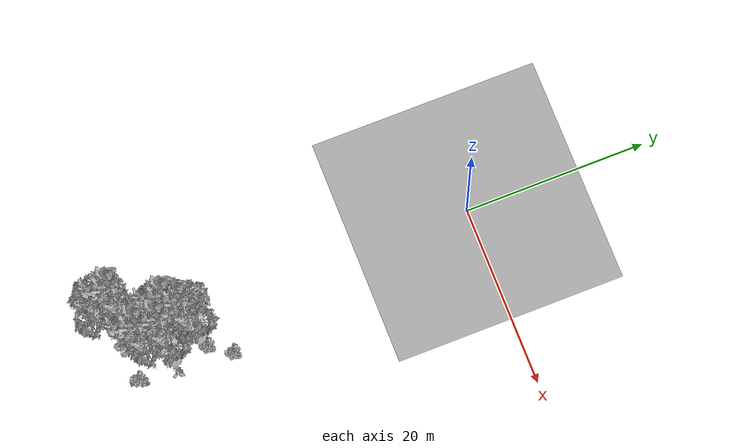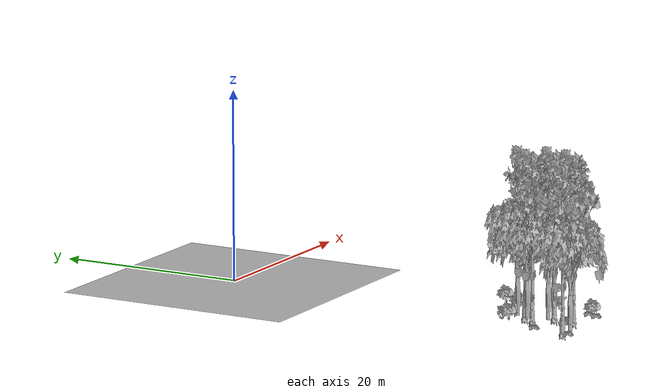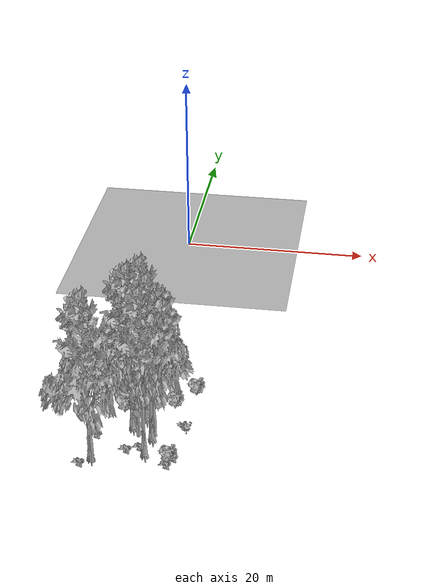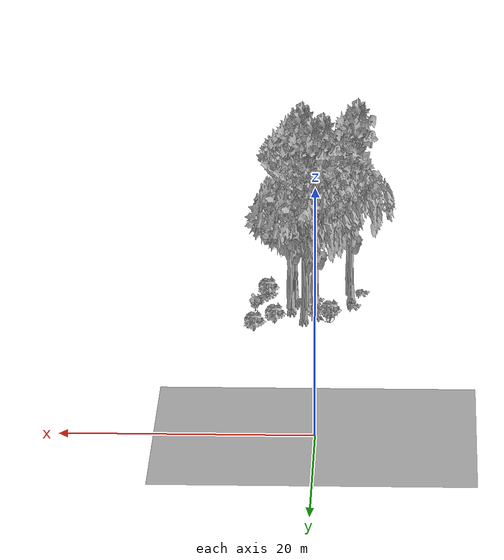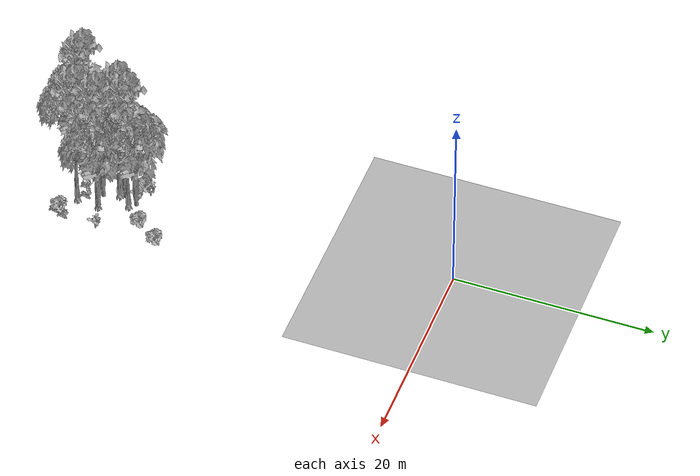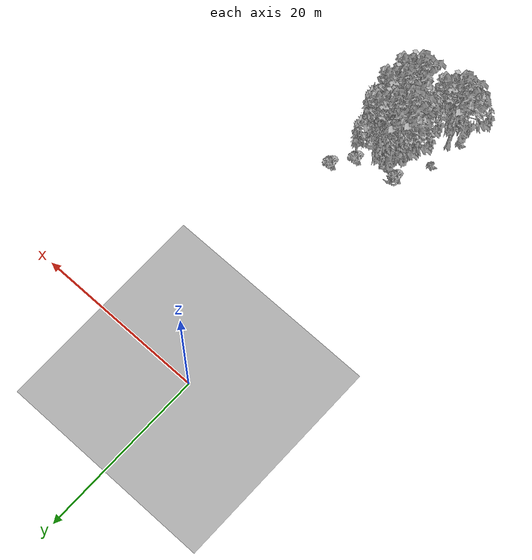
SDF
<sdf version="1.7">
 <world name="default">
  <model name="ground_plane">
   <static>1</static>
   <link name="link">
    <collision name="collision">
     <pose>-50 0 0 0 -0 0</pose>
     <geometry><plane><normal>0 0 1</normal><size>80 80</size></plane></geometry>
     <surface><contact><ode><min_depth>0.01</min_depth><max_vel>0</max_vel></ode></contact></surface>
    </collision>
    <visual name="grass">
     <cast_shadows>0</cast_shadows>
     <geometry>
      <mesh>
       <scale>0.46714285714285714 0.46714285714285714 0.1</scale>
       <uri>file://grass_plane/meshes/grass_plane.dae</uri>
      </mesh>
     </geometry>
    </visual>
   </link>
  </model>
  <model name="Tree 64">
   <static>1</static>
   <pose>0.5295374748570438 -34.00549098155232 0 1.57079 -0 0</pose>
   <link name="link">
    <collision name="collision">
     <geometry><mesh><scale>3.5 5 3.5</scale><uri>model://tree_9/meshes/tree_9.obj</uri></mesh></geometry>
    </collision>
    <visual name="visual">
     <geometry><mesh><scale>3.5 5 3.5</scale><uri>model://tree_9/meshes/tree_9.obj</uri></mesh></geometry>
    </visual>
   </link>
  </model>
  <model name="Tree 130">
   <static>1</static>
   <pose>1.5427090234277756 -32.66545588522824 0 1.57079 -0 0</pose>
   <link name="link">
    <collision name="collision">
     <geometry><mesh><scale>3.5 5 3.5</scale><uri>model://tree_9/meshes/tree_9.obj</uri></mesh></geometry>
    </collision>
    <visual name="visual">
     <geometry><mesh><scale>3.5 5 3.5</scale><uri>model://tree_9/meshes/tree_9.obj</uri></mesh></geometry>
    </visual>
   </link>
  </model>
  <model name="Tree 142">
   <static>1</static>
   <pose>1.2578529670763174 -35.38156863230821 0 1.57079 -0 0</pose>
   <link name="link">
    <collision name="collision">
     <geometry><mesh><scale>3.5 5 3.5</scale><uri>model://tree_2/meshes/tree_2.obj</uri></mesh></geometry>
    </collision>
    <visual name="visual">
     <geometry><mesh><scale>3.5 5 3.5</scale><uri>model://tree_2/meshes/tree_2.obj</uri></mesh></geometry>
    </visual>
   </link>
  </model>
  <model name="Tree 172">
   <static>1</static>
   <pose>-2.3305817990729736 -38.80384148037927 0 1.57079 -0 0</pose>
   <link name="link">
    <collision name="collision">
     <geometry><mesh><scale>3.5 5 3.5</scale><uri>model://tree_9/meshes/tree_9.obj</uri></mesh></geometry>
    </collision>
    <visual name="visual">
     <geometry><mesh><scale>3.5 5 3.5</scale><uri>model://tree_9/meshes/tree_9.obj</uri></mesh></geometry>
    </visual>
   </link>
  </model>
  <model name="Tree 200">
   <static>1</static>
   <pose>0.6920662852623778 -33.322786423635776 0 1.57079 -0 0</pose>
   <link name="link">
    <collision name="collision">
     <geometry><mesh><scale>3.5 5 3.5</scale><uri>model://tree_2/meshes/tree_2.obj</uri></mesh></geometry>
    </collision>
    <visual name="visual">
     <geometry><mesh><scale>3.5 5 3.5</scale><uri>model://tree_2/meshes/tree_2.obj</uri></mesh></geometry>
    </visual>
   </link>
  </model>
  <model name="Tree 202">
   <static>1</static>
   <pose>-2.1415870193475186 -39.52222862849379 0 1.57079 -0 0</pose>
   <link name="link">
    <collision name="collision">
     <geometry><mesh><scale>3.5 5 3.5</scale><uri>model://tree_2/meshes/tree_2.obj</uri></mesh></geometry>
    </collision>
    <visual name="visual">
     <geometry><mesh><scale>3.5 5 3.5</scale><uri>model://tree_2/meshes/tree_2.obj</uri></mesh></geometry>
    </visual>
   </link>
  </model>
  <model name="Tree 330">
   <static>1</static>
   <pose>1.3358960170198273 -31.92544864542831 0 1.57079 -0 0</pose>
   <link name="link">
    <collision name="collision">
     <geometry><mesh><scale>3.5 5 3.5</scale><uri>model://tree_2/meshes/tree_2.obj</uri></mesh></geometry>
    </collision>
    <visual name="visual">
     <geometry><mesh><scale>3.5 5 3.5</scale><uri>model://tree_2/meshes/tree_2.obj</uri></mesh></geometry>
    </visual>
   </link>
  </model>
  <model name="Tree 390">
   <static>1</static>
   <pose>2.3502347528047665 -37.653724219847106 0 1.57079 -0 0</pose>
   <link name="link">
    <collision name="collision">
     <geometry><mesh><scale>3.5 5 3.5</scale><uri>model://tree_9/meshes/tree_9.obj</uri></mesh></geometry>
    </collision>
    <visual name="visual">
     <geometry><mesh><scale>3.5 5 3.5</scale><uri>model://tree_9/meshes/tree_9.obj</uri></mesh></geometry>
    </visual>
   </link>
  </model>
  <model name="Tree 432">
   <static>1</static>
   <pose>2.7356286187591294 -35.27607991497847 0 1.57079 -0 0</pose>
   <link name="link">
    <collision name="collision">
     <geometry><mesh><scale>3.5 5 3.5</scale><uri>model://tree_2/meshes/tree_2.obj</uri></mesh></geometry>
    </collision>
    <visual name="visual">
     <geometry><mesh><scale>3.5 5 3.5</scale><uri>model://tree_2/meshes/tree_2.obj</uri></mesh></geometry>
    </visual>
   </link>
  </model>
  <model name="Tree 577">
   <static>1</static>
   <pose>2.6139746010855376 -35.40808305957634 0 1.57079 -0 0</pose>
   <link name="link">
    <collision name="collision">
     <geometry><mesh><scale>3.5 5 3.5</scale><uri>model://tree_9/meshes/tree_9.obj</uri></mesh></geometry>
    </collision>
    <visual name="visual">
     <geometry><mesh><scale>3.5 5 3.5</scale><uri>model://tree_9/meshes/tree_9.obj</uri></mesh></geometry>
    </visual>
   </link>
  </model>
  <model name="Bush 10">
   <static>1</static>
   <pose>1.7137606711055327 -37.00885366614745 0 1.57079 -0 0</pose>
   <link name="link">
    <collision name="collision">
     <geometry><mesh><scale>2 2 2</scale><uri>model://bush_2/meshes/bush_2.obj</uri></mesh></geometry>
     <surface><contact><collide_without_contact>false</collide_without_contact></contact></surface>
    </collision>
    <visual name="visual">
     <geometry><mesh><scale>2 2 2</scale><uri>model://bush_2/meshes/bush_2.obj</uri></mesh></geometry>
    </visual>
   </link>
  </model>
  <model name="Bush 63">
   <static>1</static>
   <pose>-0.6668038083219514 -32.025206133450226 0 1.57079 -0 0</pose>
   <link name="link">
    <collision name="collision">
     <geometry><mesh><scale>2 2 2</scale><uri>model://bush_1/meshes/bush_1.obj</uri></mesh></geometry>
     <surface><contact><collide_without_contact>false</collide_without_contact></contact></surface>
    </collision>
    <visual name="visual">
     <geometry><mesh><scale>2 2 2</scale><uri>model://bush_1/meshes/bush_1.obj</uri></mesh></geometry>
    </visual>
   </link>
  </model>
  <model name="Bush 122">
   <static>1</static>
   <pose>4.951457754012047 -38.10043527495101 0 1.57079 -0 0</pose>
   <link name="link">
    <collision name="collision">
     <geometry><mesh><scale>2 2 2</scale><uri>model://bush_2/meshes/bush_2.obj</uri></mesh></geometry>
     <surface><contact><collide_without_contact>false</collide_without_contact></contact></surface>
    </collision>
    <visual name="visual">
     <geometry><mesh><scale>2 2 2</scale><uri>model://bush_2/meshes/bush_2.obj</uri></mesh></geometry>
    </visual>
   </link>
  </model>
  <model name="Bush 144">
   <static>1</static>
   <pose>5.620495621836497 -34.42841341451275 0 1.57079 -0 0</pose>
   <link name="link">
    <collision name="collision">
     <geometry><mesh><scale>2 2 2</scale><uri>model://bush_0/meshes/bush_0.obj</uri></mesh></geometry>
     <surface><contact><collide_without_contact>false</collide_without_contact></contact></surface>
    </collision>
    <visual name="visual">
     <geometry><mesh><scale>2 2 2</scale><uri>model://bush_0/meshes/bush_0.obj</uri></mesh></geometry>
    </visual>
   </link>
  </model>
  <model name="Bush 152">
   <static>1</static>
   <pose>-0.5706097875528329 -31.2137728305329 0 1.57079 -0 0</pose>
   <link name="link">
    <collision name="collision">
     <geometry><mesh><scale>2 2 2</scale><uri>model://bush_4/meshes/bush_4.obj</uri></mesh></geometry>
     <surface><contact><collide_without_contact>false</collide_without_contact></contact></surface>
    </collision>
    <visual name="visual">
     <geometry><mesh><scale>2 2 2</scale><uri>model://bush_4/meshes/bush_4.obj</uri></mesh></geometry>
    </visual>
   </link>
  </model>
  <model name="Bush 206">
   <static>1</static>
   <pose>0.5395644531053421 -37.47978364155274 0 1.57079 -0 0</pose>
   <link name="link">
    <collision name="collision">
     <geometry><mesh><scale>2 2 2</scale><uri>model://bush_2/meshes/bush_2.obj</uri></mesh></geometry>
     <surface><contact><collide_without_contact>false</collide_without_contact></contact></surface>
    </collision>
    <visual name="visual">
     <geometry><mesh><scale>2 2 2</scale><uri>model://bush_2/meshes/bush_2.obj</uri></mesh></geometry>
    </visual>
   </link>
  </model>
  <model name="Bush 322">
   <static>1</static>
   <pose>0.7633657114597057 -31.945399852092216 0 1.57079 -0 0</pose>
   <link name="link">
    <collision name="collision">
     <geometry><mesh><scale>2 2 2</scale><uri>model://bush_0/meshes/bush_0.obj</uri></mesh></geometry>
     <surface><contact><collide_without_contact>false</collide_without_contact></contact></surface>
    </collision>
    <visual name="visual">
     <geometry><mesh><scale>2 2 2</scale><uri>model://bush_0/meshes/bush_0.obj</uri></mesh></geometry>
    </visual>
   </link>
  </model>
  <model name="Bush 432">
   <static>1</static>
   <pose>4.507577562250759 -39.13180944782232 0 1.57079 -0 0</pose>
   <link name="link">
    <collision name="collision">
     <geometry><mesh><scale>2 2 2</scale><uri>model://bush_2/meshes/bush_2.obj</uri></mesh></geometry>
     <surface><contact><collide_without_contact>false</collide_without_contact></contact></surface>
    </collision>
    <visual name="visual">
     <geometry><mesh><scale>2 2 2</scale><uri>model://bush_2/meshes/bush_2.obj</uri></mesh></geometry>
    </visual>
   </link>
  </model>
  <model name="Bush 454">
   <static>1</static>
   <pose>5.582050923139661 -28.525593607107965 0 1.57079 -0 0</pose>
   <link name="link">
    <collision name="collision">
     <geometry><mesh><scale>2 2 2</scale><uri>model://bush_1/meshes/bush_1.obj</uri></mesh></geometry>
     <surface><contact><collide_without_contact>false</collide_without_contact></contact></surface>
    </collision>
    <visual name="visual">
     <geometry><mesh><scale>2 2 2</scale><uri>model://bush_1/meshes/bush_1.obj</uri></mesh></geometry>
    </visual>
   </link>
  </model>
  <model name="Bush 475">
   <static>1</static>
   <pose>-3.2340407284116424 -39.845690377772804 0 1.57079 -0 0</pose>
   <link name="link">
    <collision name="collision">
     <geometry><mesh><scale>2 2 2</scale><uri>model://bush_2/meshes/bush_2.obj</uri></mesh></geometry>
     <surface><contact><collide_without_contact>false</collide_without_contact></contact></surface>
    </collision>
    <visual name="visual">
     <geometry><mesh><scale>2 2 2</scale><uri>model://bush_2/meshes/bush_2.obj</uri></mesh></geometry>
    </visual>
   </link>
  </model>
  <model name="Bush 507">
   <static>1</static>
   <pose>4.702488357788596 -38.73874024896792 0 1.57079 -0 0</pose>
   <link name="link">
    <collision name="collision">
     <geometry><mesh><scale>2 2 2</scale><uri>model://bush_1/meshes/bush_1.obj</uri></mesh></geometry>
     <surface><contact><collide_without_contact>false</collide_without_contact></contact></surface>
    </collision>
    <visual name="visual">
     <geometry><mesh><scale>2 2 2</scale><uri>model://bush_1/meshes/bush_1.obj</uri></mesh></geometry>
    </visual>
   </link>
  </model>
  <model name="Bush 515">
   <static>1</static>
   <pose>-2.565292407753283 -35.776823010274974 0 1.57079 -0 0</pose>
   <link name="link">
    <collision name="collision">
     <geometry><mesh><scale>2 2 2</scale><uri>model://bush_2/meshes/bush_2.obj</uri></mesh></geometry>
     <surface><contact><collide_without_contact>false</collide_without_contact></contact></surface>
    </collision>
    <visual name="visual">
     <geometry><mesh><scale>2 2 2</scale><uri>model://bush_2/meshes/bush_2.obj</uri></mesh></geometry>
    </visual>
   </link>
  </model>
  <model name="Bush 522">
   <static>1</static>
   <pose>3.9387966177601754 -30.803954842204906 0 1.57079 -0 0</pose>
   <link name="link">
    <collision name="collision">
     <geometry><mesh><scale>2 2 2</scale><uri>model://bush_1/meshes/bush_1.obj</uri></mesh></geometry>
     <surface><contact><collide_without_contact>false</collide_without_contact></contact></surface>
    </collision>
    <visual name="visual">
     <geometry><mesh><scale>2 2 2</scale><uri>model://bush_1/meshes/bush_1.obj</uri></mesh></geometry>
    </visual>
   </link>
  </model>
 </world>
</sdf>
